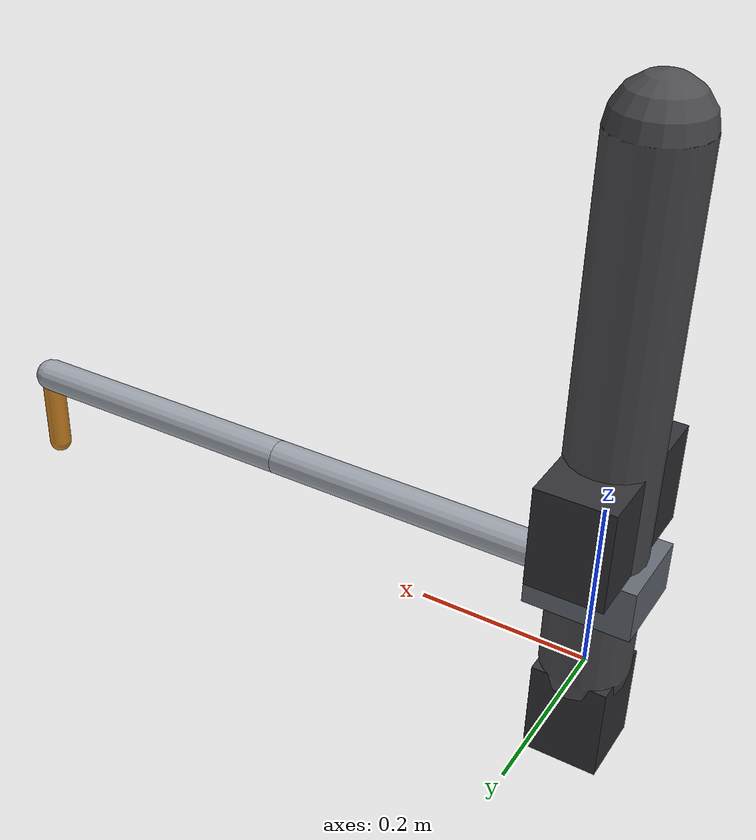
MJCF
<mujoco model="scara">
  <compiler angle="radian"/>
  <option timestep="0.001" gravity="0 0 -9.81" integrator="implicitfast"
          solver="Newton" iterations="200" tolerance="1e-14"/>

  <default>
    <geom type="capsule" density="2700" contype="0" conaffinity="0"
          size="0.020000" rgba="0.62 0.64 0.68 1"/>
    <joint type="hinge" axis="0 0 1" damping="0.05"/>
    <site type="sphere" size="0.010" rgba="1 0.35 0.1 1"/>
  </default>

  <worldbody>
    <geom name="column" type="capsule" fromto="0 0 0  0 0 0.600000" size="0.050000"
          rgba="0.30 0.30 0.32 1"/>
    <!-- lift motor: grounded at the column base, drives the carriage -->
    <geom name="motor_lift" type="box" size="0.043 0.043 0.058"
          pos="0 0 -0.058" mass="3.8" rgba="0.20 0.20 0.22 1"/>

    <body name="carriage" pos="0 0 0.120000">
      <joint name="q2_lift" type="slide" axis="0 0 1" damping="1.0"
             armature="10.409348"/>
      <geom name="g_carriage" type="box" size="0.060 0.050 0.030"
            rgba="0.40 0.42 0.46 1"/>
      <!-- both revolute motors ride the carriage, coaxial at the shoulder -->
      <geom name="motor_q0" type="box" size="0.043 0.043 0.058"
            pos="0 0.050 0.088" mass="3.8" rgba="0.20 0.20 0.22 1"/>
      <geom name="motor_q1" type="box" size="0.043 0.043 0.058"
            pos="0 -0.050 0.088" mass="3.8" rgba="0.20 0.20 0.22 1"/>

      <body name="link1" pos="0 0 0">
        <joint name="q0_shoulder" armature="0.168750"/>
        <geom name="g_link1" fromto="0 0 0  0.400000 0 0"/>
        <site name="shoulder" pos="0 0 0"/>

        <body name="link2" pos="0.400000 0 0">
          <joint name="q1_forearm_rel" armature="0.168750"/>
          <geom name="g_link2" fromto="0 0 0  0.350000 0 0"/>
          <site name="elbow" pos="0 0 0"/>

          <body name="tool" pos="0.350000 0 0">
            <geom name="g_gripper" size="0.014" fromto="0 0 0  0 0 -0.100000"
                  rgba="0.85 0.55 0.15 1"/>
            <site name="tcp" pos="0 0 -0.100000" size="0.012"
                  rgba="0.15 0.85 0.35 1"/>
          </body>
        </body>
      </body>
    </body>
  </worldbody>

  <actuator>
    <position name="a_q0"   joint="q0_shoulder"    kp="4000" kv="200"/>
    <position name="a_q1"   joint="q1_forearm_rel" kp="4000" kv="200"/>
    <position name="a_lift" joint="q2_lift"        kp="40000" kv="2000"/>
  </actuator>
</mujoco>
